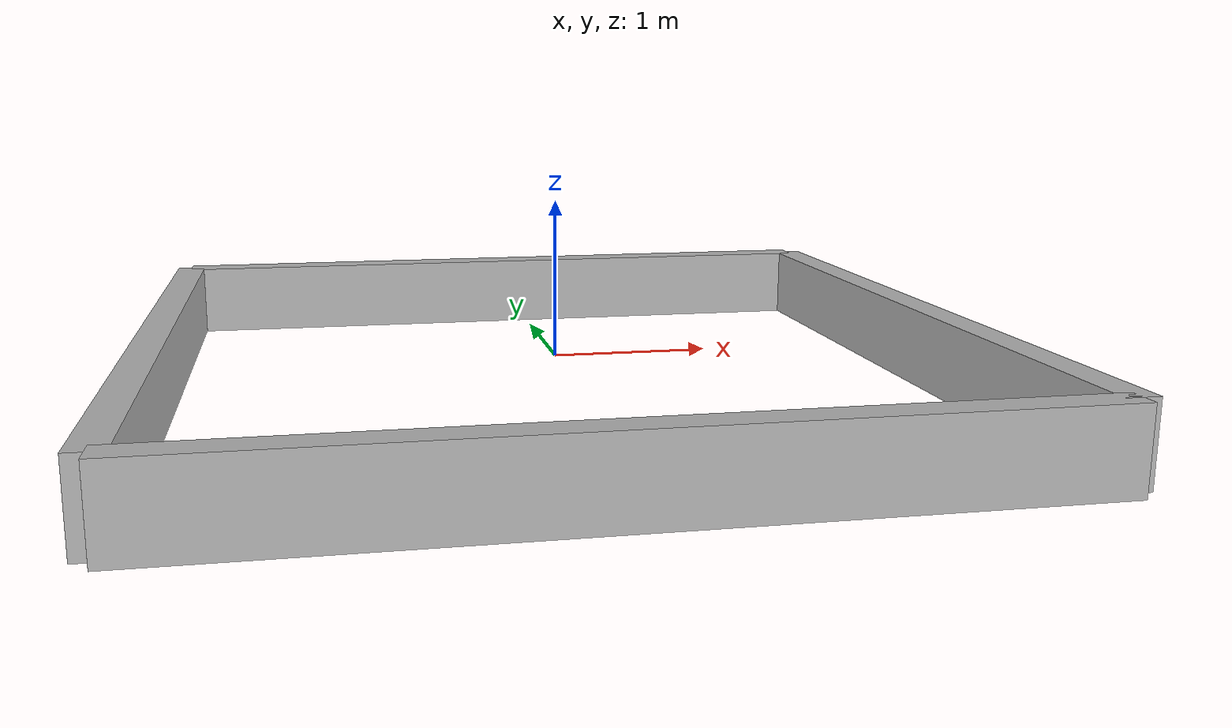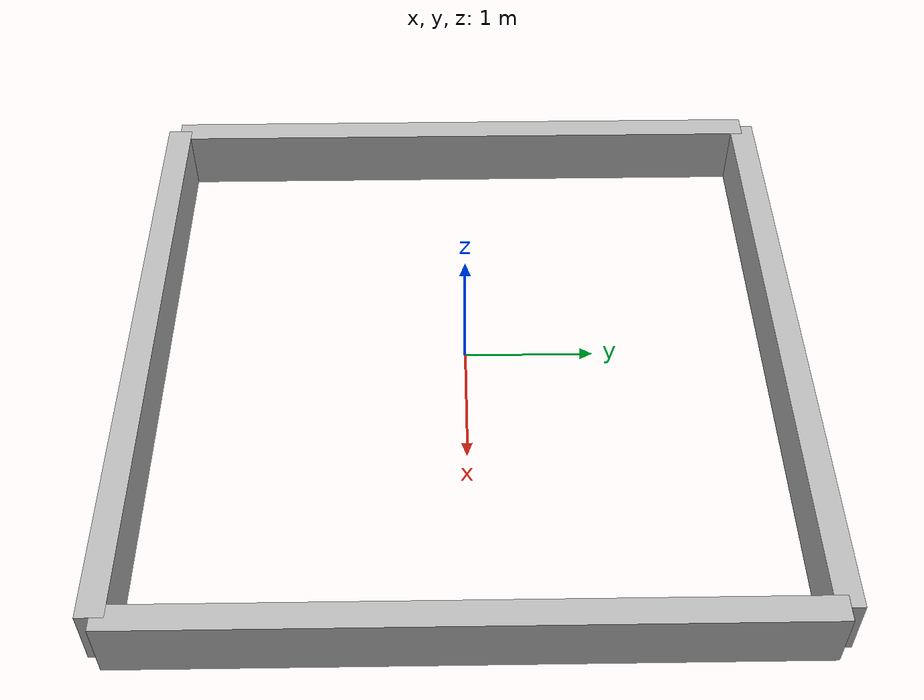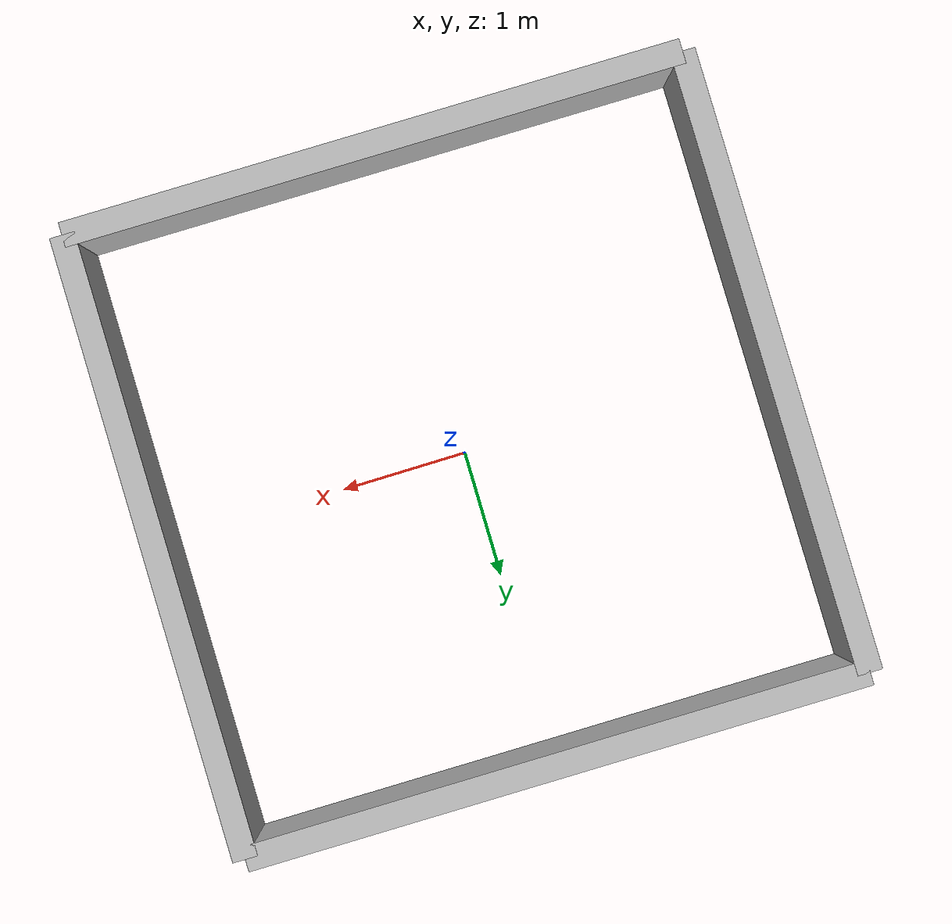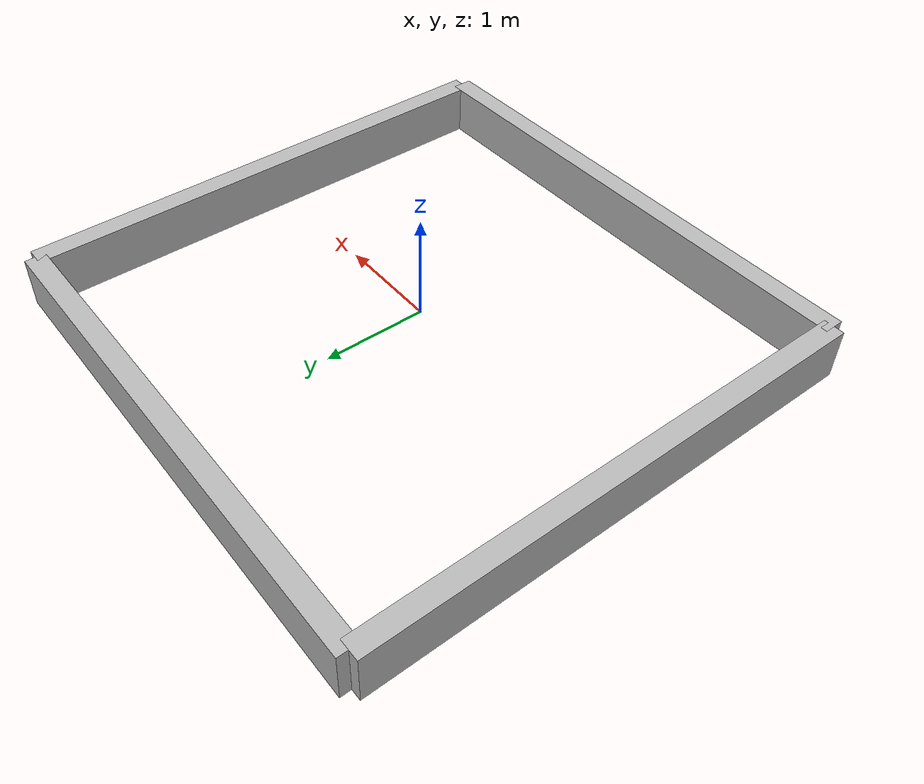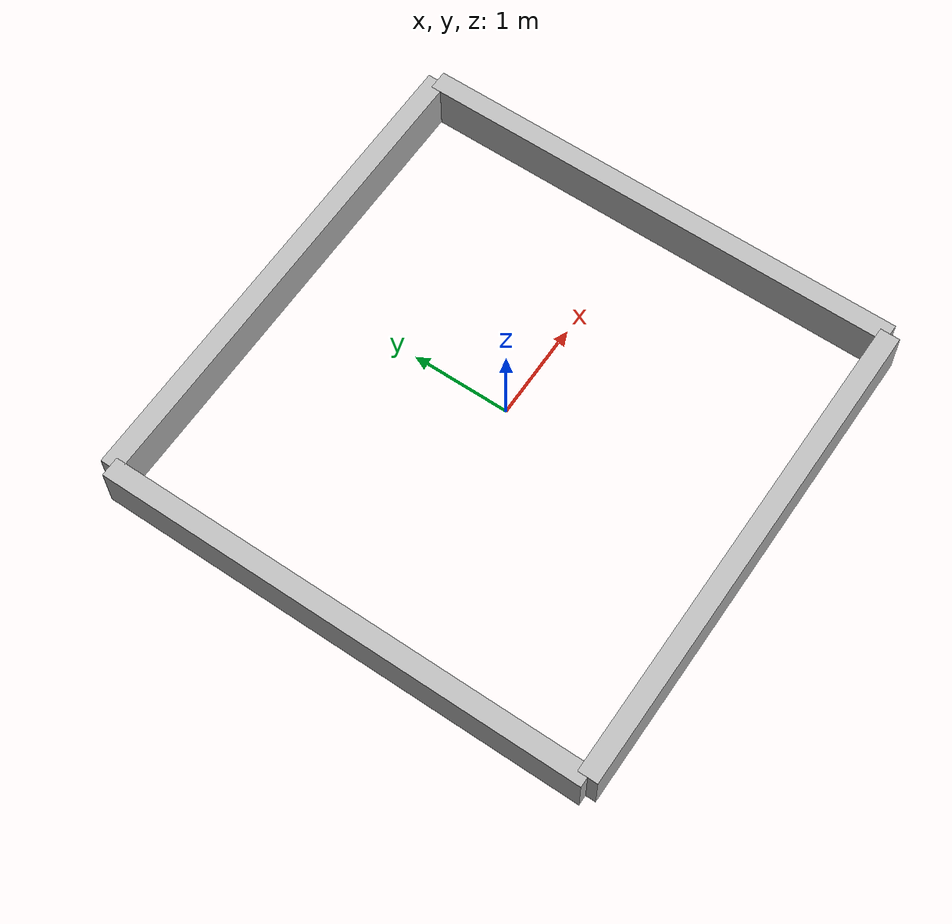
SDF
<?xml version='1.0'?>
<sdf version='1.4'>
  <model name="fence">
    <static>true</static>
    <link name='fence1'>
      <pose>-2.5 0 0 0 0 0</pose>
      <collision name='collision'>
        <geometry>
          <box>
               <size>.2 5 .5</size>
          </box>
        </geometry>
      </collision>

      <visual name='visual'>
        <geometry>
          <box>
               <size>.2 5 .5</size>
          </box>
        </geometry>
      </visual>
	</link>

    <link name='fence2'>
      <pose>0 2.5 0 0 0 0</pose>
      <collision name='collision'>
        <geometry>
          <box>
               <size>5 .2 .5</size>
          </box>
        </geometry>
      </collision>

      <visual name='visual'>
        <geometry>
          <box>
               <size>5 .2 .5</size>
          </box>
        </geometry>
      </visual>
  </link>

  <link name='fence3'>
    <pose>0 -2.5 0 0 0 0</pose>
    <collision name='collision'>
      <geometry>
        <box>
             <size>5 .2 .5</size>
        </box>
      </geometry>
    </collision>

    <visual name='visual'>
      <geometry>
        <box>
             <size>5 .2 .5</size>
        </box>
      </geometry>
    </visual>
  </link>

    <link name='fence4'>
      <pose>2.5 0 0 0 0 0</pose>
      <collision name='collision'>
        <geometry>
          <box>
               <size>.2 5 .5</size>
          </box>
        </geometry>
      </collision>

      <visual name='visual'>
        <geometry>
          <box>
               <size>.2 5 .5</size>
          </box>
        </geometry>
      </visual>
  </link>
  </model>
</sdf>
